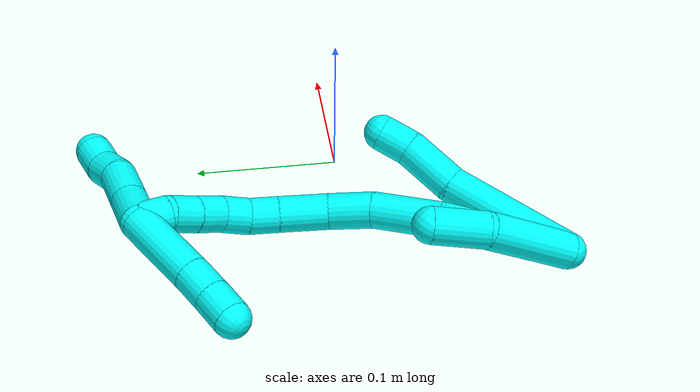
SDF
<sdf version="1.7">
 <world name="default">
  <model name="3">
   <static>0</static>
   <link name="3">
    <collision name="collision-cylinder-e_1_2_8">
     <pose>-0.008953 0.006835 0.043091 -0.157308 -0.202401 0.016007</pose>
     <geometry><cylinder><radius>0.0125</radius><length>0.089078</length></cylinder></geometry>
     <surface>
      <friction><ode><mu>1.16</mu><mu2>1.16</mu2><slip1>0</slip1><slip2>0</slip2></ode></friction>
      <contact><ode><kp>1e+06</kp><kd>1</kd><max_vel>0</max_vel><min_depth>0.001</min_depth></ode></contact>
     </surface>
    </collision>
    <visual name="visual-cylinder-e_1_2_8">
     <pose>-0.008953 0.006835 0.043091 -0.157308 -0.202401 0.016007</pose>
     <geometry><cylinder><radius>0.0125</radius><length>0.089078</length></cylinder></geometry>
     <material><ambient>0.003922 1 0.996078 1</ambient></material>
    </visual>
    <collision name="collision-cylinder-e_2_8_9">
     <pose>-0.021757 0.012841 0.105172 0.043643 -0.199836 -0.004376</pose>
     <geometry><cylinder><radius>0.0125</radius><length>0.038788</length></cylinder></geometry>
     <surface>
      <friction><ode><mu>1.16</mu><mu2>1.16</mu2><slip1>0</slip1><slip2>0</slip2></ode></friction>
      <contact><ode><kp>1e+06</kp><kd>1</kd><max_vel>0</max_vel><min_depth>0.001</min_depth></ode></contact>
     </surface>
    </collision>
    <visual name="visual-cylinder-e_2_8_9">
     <pose>-0.021757 0.012841 0.105172 0.043643 -0.199836 -0.004376</pose>
     <geometry><cylinder><radius>0.0125</radius><length>0.038788</length></cylinder></geometry>
     <material><ambient>0.003922 1 0.996078 1</ambient></material>
    </visual>
    <collision name="collision-cylinder-e_3_9_6">
     <pose>-0.02963 0.013971 0.134284 -0.191178 -0.372106 0.036092</pose>
     <geometry><cylinder><radius>0.0125</radius><length>0.022134</length></cylinder></geometry>
     <surface>
      <friction><ode><mu>1.16</mu><mu2>1.16</mu2><slip1>0</slip1><slip2>0</slip2></ode></friction>
      <contact><ode><kp>1e+06</kp><kd>1</kd><max_vel>0</max_vel><min_depth>0.001</min_depth></ode></contact>
     </surface>
    </collision>
    <visual name="visual-cylinder-e_3_9_6">
     <pose>-0.02963 0.013971 0.134284 -0.191178 -0.372106 0.036092</pose>
     <geometry><cylinder><radius>0.0125</radius><length>0.022134</length></cylinder></geometry>
     <material><ambient>0.003922 1 0.996078 1</ambient></material>
    </visual>
    <collision name="collision-cylinder-e_1_2_10">
     <pose>-0.023046 0.01225 0.016937 -0.626172 -0.834116 0.284916</pose>
     <geometry><cylinder><radius>0.0125</radius><length>0.062228</length></cylinder></geometry>
     <surface>
      <friction><ode><mu>1.16</mu><mu2>1.16</mu2><slip1>0</slip1><slip2>0</slip2></ode></friction>
      <contact><ode><kp>1e+06</kp><kd>1</kd><max_vel>0</max_vel><min_depth>0.001</min_depth></ode></contact>
     </surface>
    </collision>
    <visual name="visual-cylinder-e_1_2_10">
     <pose>-0.023046 0.01225 0.016937 -0.626172 -0.834116 0.284916</pose>
     <geometry><cylinder><radius>0.0125</radius><length>0.062228</length></cylinder></geometry>
     <material><ambient>0.003922 1 0.996078 1</ambient></material>
    </visual>
    <collision name="collision-cylinder-e_2_10_5">
     <pose>-0.055627 0.035101 0.046261 -0.707842 -0.529212 0.199562</pose>
     <geometry><cylinder><radius>0.0125</radius><length>0.037772</length></cylinder></geometry>
     <surface>
      <friction><ode><mu>1.16</mu><mu2>1.16</mu2><slip1>0</slip1><slip2>0</slip2></ode></friction>
      <contact><ode><kp>1e+06</kp><kd>1</kd><max_vel>0</max_vel><min_depth>0.001</min_depth></ode></contact>
     </surface>
    </collision>
    <visual name="visual-cylinder-e_2_10_5">
     <pose>-0.055627 0.035101 0.046261 -0.707842 -0.529212 0.199562</pose>
     <geometry><cylinder><radius>0.0125</radius><length>0.037772</length></cylinder></geometry>
     <material><ambient>0.003922 1 0.996078 1</ambient></material>
    </visual>
    <collision name="collision-cylinder-e_1_2_11">
     <pose>-0.014156 0.018575 0.035308 -0.484302 -0.340968 0.084993</pose>
     <geometry><cylinder><radius>0.0125</radius><length>0.084666</length></cylinder></geometry>
     <surface>
      <friction><ode><mu>1.16</mu><mu2>1.16</mu2><slip1>0</slip1><slip2>0</slip2></ode></friction>
      <contact><ode><kp>1e+06</kp><kd>1</kd><max_vel>0</max_vel><min_depth>0.001</min_depth></ode></contact>
     </surface>
    </collision>
    <visual name="visual-cylinder-e_1_2_11">
     <pose>-0.014156 0.018575 0.035308 -0.484302 -0.340968 0.084993</pose>
     <geometry><cylinder><radius>0.0125</radius><length>0.084666</length></cylinder></geometry>
     <material><ambient>0.003922 1 0.996078 1</ambient></material>
    </visual>
    <collision name="collision-cylinder-e_2_11_12">
     <pose>-0.030855 0.048938 0.091265 -0.518709 -0.106552 0.028296</pose>
     <geometry><cylinder><radius>0.0125</radius><length>0.047825</length></cylinder></geometry>
     <surface>
      <friction><ode><mu>1.16</mu><mu2>1.16</mu2><slip1>0</slip1><slip2>0</slip2></ode></friction>
      <contact><ode><kp>1e+06</kp><kd>1</kd><max_vel>0</max_vel><min_depth>0.001</min_depth></ode></contact>
     </surface>
    </collision>
    <visual name="visual-cylinder-e_2_11_12">
     <pose>-0.030855 0.048938 0.091265 -0.518709 -0.106552 0.028296</pose>
     <geometry><cylinder><radius>0.0125</radius><length>0.047825</length></cylinder></geometry>
     <material><ambient>0.003922 1 0.996078 1</ambient></material>
    </visual>
    <collision name="collision-cylinder-e_3_12_13">
     <pose>-0.035947 0.070833 0.123336 -0.724418 -0.165556 0.062857</pose>
     <geometry><cylinder><radius>0.0125</radius><length>0.030928</length></cylinder></geometry>
     <surface>
      <friction><ode><mu>1.16</mu><mu2>1.16</mu2><slip1>0</slip1><slip2>0</slip2></ode></friction>
      <contact><ode><kp>1e+06</kp><kd>1</kd><max_vel>0</max_vel><min_depth>0.001</min_depth></ode></contact>
     </surface>
    </collision>
    <visual name="visual-cylinder-e_3_12_13">
     <pose>-0.035947 0.070833 0.123336 -0.724418 -0.165556 0.062857</pose>
     <geometry><cylinder><radius>0.0125</radius><length>0.030928</length></cylinder></geometry>
     <material><ambient>0.003922 1 0.996078 1</ambient></material>
    </visual>
    <collision name="collision-cylinder-e_4_13_14">
     <pose>-0.04596 0.092718 0.145104 -0.850055 -0.444447 0.203834</pose>
     <geometry><cylinder><radius>0.0125</radius><length>0.034725</length></cylinder></geometry>
     <surface>
      <friction><ode><mu>1.16</mu><mu2>1.16</mu2><slip1>0</slip1><slip2>0</slip2></ode></friction>
      <contact><ode><kp>1e+06</kp><kd>1</kd><max_vel>0</max_vel><min_depth>0.001</min_depth></ode></contact>
     </surface>
    </collision>
    <visual name="visual-cylinder-e_4_13_14">
     <pose>-0.04596 0.092718 0.145104 -0.850055 -0.444447 0.203834</pose>
     <geometry><cylinder><radius>0.0125</radius><length>0.034725</length></cylinder></geometry>
     <material><ambient>0.003922 1 0.996078 1</ambient></material>
    </visual>
    <collision name="collision-cylinder-e_5_14_15">
     <pose>-0.058534 0.111465 0.161169 -0.883543 -0.515475 0.248058</pose>
     <geometry><cylinder><radius>0.0125</radius><length>0.020725</length></cylinder></geometry>
     <surface>
      <friction><ode><mu>1.16</mu><mu2>1.16</mu2><slip1>0</slip1><slip2>0</slip2></ode></friction>
      <contact><ode><kp>1e+06</kp><kd>1</kd><max_vel>0</max_vel><min_depth>0.001</min_depth></ode></contact>
     </surface>
    </collision>
    <visual name="visual-cylinder-e_5_14_15">
     <pose>-0.058534 0.111465 0.161169 -0.883543 -0.515475 0.248058</pose>
     <geometry><cylinder><radius>0.0125</radius><length>0.020725</length></cylinder></geometry>
     <material><ambient>0.003922 1 0.996078 1</ambient></material>
    </visual>
    <collision name="collision-cylinder-e_6_15_16">
     <pose>-0.071077 0.12354 0.171516 -0.834581 -0.823389 0.382425</pose>
     <geometry><cylinder><radius>0.0125</radius><length>0.020275</length></cylinder></geometry>
     <surface>
      <friction><ode><mu>1.16</mu><mu2>1.16</mu2><slip1>0</slip1><slip2>0</slip2></ode></friction>
      <contact><ode><kp>1e+06</kp><kd>1</kd><max_vel>0</max_vel><min_depth>0.001</min_depth></ode></contact>
     </surface>
    </collision>
    <visual name="visual-cylinder-e_6_15_16">
     <pose>-0.071077 0.12354 0.171516 -0.834581 -0.823389 0.382425</pose>
     <geometry><cylinder><radius>0.0125</radius><length>0.020275</length></cylinder></geometry>
     <material><ambient>0.003922 1 0.996078 1</ambient></material>
    </visual>
    <collision name="collision-cylinder-e_7_16_17">
     <pose>-0.087005 0.133758 0.178507 -1.13756 -0.985293 0.661106</pose>
     <geometry><cylinder><radius>0.0125</radius><length>0.02038</length></cylinder></geometry>
     <surface>
      <friction><ode><mu>1.16</mu><mu2>1.16</mu2><slip1>0</slip1><slip2>0</slip2></ode></friction>
      <contact><ode><kp>1e+06</kp><kd>1</kd><max_vel>0</max_vel><min_depth>0.001</min_depth></ode></contact>
     </surface>
    </collision>
    <visual name="visual-cylinder-e_7_16_17">
     <pose>-0.087005 0.133758 0.178507 -1.13756 -0.985293 0.661106</pose>
     <geometry><cylinder><radius>0.0125</radius><length>0.02038</length></cylinder></geometry>
     <material><ambient>0.003922 1 0.996078 1</ambient></material>
    </visual>
    <collision name="collision-cylinder-e_8_17_18">
     <pose>-0.103968 0.143714 0.183422 -1.08613 -0.996904 0.634856</pose>
     <geometry><cylinder><radius>0.0125</radius><length>0.020172</length></cylinder></geometry>
     <surface>
      <friction><ode><mu>1.16</mu><mu2>1.16</mu2><slip1>0</slip1><slip2>0</slip2></ode></friction>
      <contact><ode><kp>1e+06</kp><kd>1</kd><max_vel>0</max_vel><min_depth>0.001</min_depth></ode></contact>
     </surface>
    </collision>
    <visual name="visual-cylinder-e_8_17_18">
     <pose>-0.103968 0.143714 0.183422 -1.08613 -0.996904 0.634856</pose>
     <geometry><cylinder><radius>0.0125</radius><length>0.020172</length></cylinder></geometry>
     <material><ambient>0.003922 1 0.996078 1</ambient></material>
    </visual>
    <collision name="collision-cylinder-e_9_18_1">
     <pose>-0.118675 0.156061 0.188785 -1.21222 -0.661434 0.46726</pose>
     <geometry><cylinder><radius>0.0125</radius><length>0.020305</length></cylinder></geometry>
     <surface>
      <friction><ode><mu>1.16</mu><mu2>1.16</mu2><slip1>0</slip1><slip2>0</slip2></ode></friction>
      <contact><ode><kp>1e+06</kp><kd>1</kd><max_vel>0</max_vel><min_depth>0.001</min_depth></ode></contact>
     </surface>
    </collision>
    <visual name="visual-cylinder-e_9_18_1">
     <pose>-0.118675 0.156061 0.188785 -1.21222 -0.661434 0.46726</pose>
     <geometry><cylinder><radius>0.0125</radius><length>0.020305</length></cylinder></geometry>
     <material><ambient>0.003922 1 0.996078 1</ambient></material>
    </visual>
    <collision name="collision-cylinder-e_1_1_19">
     <pose>-0.125823 0.164109 0.163457 -3.12216 -0.032398 2.06132</pose>
     <geometry><cylinder><radius>0.0125</radius><length>0.056319</length></cylinder></geometry>
     <surface>
      <friction><ode><mu>1.16</mu><mu2>1.16</mu2><slip1>0</slip1><slip2>0</slip2></ode></friction>
      <contact><ode><kp>1e+06</kp><kd>1</kd><max_vel>0</max_vel><min_depth>0.001</min_depth></ode></contact>
     </surface>
    </collision>
    <visual name="visual-cylinder-e_1_1_19">
     <pose>-0.125823 0.164109 0.163457 -3.12216 -0.032398 2.06132</pose>
     <geometry><cylinder><radius>0.0125</radius><length>0.056319</length></cylinder></geometry>
     <material><ambient>0.003922 1 0.996078 1</ambient></material>
    </visual>
    <collision name="collision-cylinder-e_2_19_20">
     <pose>-0.127341 0.165247 0.124223 -3.08833 -0.054481 1.59341</pose>
     <geometry><cylinder><radius>0.0125</radius><length>0.022252</length></cylinder></geometry>
     <surface>
      <friction><ode><mu>1.16</mu><mu2>1.16</mu2><slip1>0</slip1><slip2>0</slip2></ode></friction>
      <contact><ode><kp>1e+06</kp><kd>1</kd><max_vel>0</max_vel><min_depth>0.001</min_depth></ode></contact>
     </surface>
    </collision>
    <visual name="visual-cylinder-e_2_19_20">
     <pose>-0.127341 0.165247 0.124223 -3.08833 -0.054481 1.59341</pose>
     <geometry><cylinder><radius>0.0125</radius><length>0.022252</length></cylinder></geometry>
     <material><ambient>0.003922 1 0.996078 1</ambient></material>
    </visual>
    <collision name="collision-cylinder-e_3_20_4">
     <pose>-0.129048 0.16656 0.102497 -3.07387 -0.103009 1.9789</pose>
     <geometry><cylinder><radius>0.0125</radius><length>0.021429</length></cylinder></geometry>
     <surface>
      <friction><ode><mu>1.16</mu><mu2>1.16</mu2><slip1>0</slip1><slip2>0</slip2></ode></friction>
      <contact><ode><kp>1e+06</kp><kd>1</kd><max_vel>0</max_vel><min_depth>0.001</min_depth></ode></contact>
     </surface>
    </collision>
    <visual name="visual-cylinder-e_3_20_4">
     <pose>-0.129048 0.16656 0.102497 -3.07387 -0.103009 1.9789</pose>
     <geometry><cylinder><radius>0.0125</radius><length>0.021429</length></cylinder></geometry>
     <material><ambient>0.003922 1 0.996078 1</ambient></material>
    </visual>
    <collision name="collision-cylinder-e_1_1_21">
     <pose>-0.118502 0.161568 0.20366 0.163859 0.48274 0.040422</pose>
     <geometry><cylinder><radius>0.0125</radius><length>0.027611</length></cylinder></geometry>
     <surface>
      <friction><ode><mu>1.16</mu><mu2>1.16</mu2><slip1>0</slip1><slip2>0</slip2></ode></friction>
      <contact><ode><kp>1e+06</kp><kd>1</kd><max_vel>0</max_vel><min_depth>0.001</min_depth></ode></contact>
     </surface>
    </collision>
    <visual name="visual-cylinder-e_1_1_21">
     <pose>-0.118502 0.161568 0.20366 0.163859 0.48274 0.040422</pose>
     <geometry><cylinder><radius>0.0125</radius><length>0.027611</length></cylinder></geometry>
     <material><ambient>0.003922 1 0.996078 1</ambient></material>
    </visual>
    <collision name="collision-cylinder-e_2_21_22">
     <pose>-0.105687 0.156765 0.230124 0.192597 0.41173 0.040338</pose>
     <geometry><cylinder><radius>0.0125</radius><length>0.032017</length></cylinder></geometry>
     <surface>
      <friction><ode><mu>1.16</mu><mu2>1.16</mu2><slip1>0</slip1><slip2>0</slip2></ode></friction>
      <contact><ode><kp>1e+06</kp><kd>1</kd><max_vel>0</max_vel><min_depth>0.001</min_depth></ode></contact>
     </surface>
    </collision>
    <visual name="visual-cylinder-e_2_21_22">
     <pose>-0.105687 0.156765 0.230124 0.192597 0.41173 0.040338</pose>
     <geometry><cylinder><radius>0.0125</radius><length>0.032017</length></cylinder></geometry>
     <material><ambient>0.003922 1 0.996078 1</ambient></material>
    </visual>
    <collision name="collision-cylinder-e_3_22_23">
     <pose>-0.095712 0.155415 0.253881 -0.154609 0.360291 -0.028212</pose>
     <geometry><cylinder><radius>0.0125</radius><length>0.020242</length></cylinder></geometry>
     <surface>
      <friction><ode><mu>1.16</mu><mu2>1.16</mu2><slip1>0</slip1><slip2>0</slip2></ode></friction>
      <contact><ode><kp>1e+06</kp><kd>1</kd><max_vel>0</max_vel><min_depth>0.001</min_depth></ode></contact>
     </surface>
    </collision>
    <visual name="visual-cylinder-e_3_22_23">
     <pose>-0.095712 0.155415 0.253881 -0.154609 0.360291 -0.028212</pose>
     <geometry><cylinder><radius>0.0125</radius><length>0.020242</length></cylinder></geometry>
     <material><ambient>0.003922 1 0.996078 1</ambient></material>
    </visual>
    <collision name="collision-cylinder-e_4_23_3">
     <pose>-0.089808 0.155454 0.272927 0.1455 0.234217 0.017147</pose>
     <geometry><cylinder><radius>0.0125</radius><length>0.02013</length></cylinder></geometry>
     <surface>
      <friction><ode><mu>1.16</mu><mu2>1.16</mu2><slip1>0</slip1><slip2>0</slip2></ode></friction>
      <contact><ode><kp>1e+06</kp><kd>1</kd><max_vel>0</max_vel><min_depth>0.001</min_depth></ode></contact>
     </surface>
    </collision>
    <visual name="visual-cylinder-e_4_23_3">
     <pose>-0.089808 0.155454 0.272927 0.1455 0.234217 0.017147</pose>
     <geometry><cylinder><radius>0.0125</radius><length>0.02013</length></cylinder></geometry>
     <material><ambient>0.003922 1 0.996078 1</ambient></material>
    </visual>
    <collision name="collision-sphere-3">
     <pose>-0.087472 0.154035 0.282613 0 -0 0</pose>
     <geometry><sphere><radius>0.0125</radius></sphere></geometry>
     <surface>
      <friction><ode><mu>1.16</mu><mu2>1.16</mu2><slip1>0</slip1><slip2>0</slip2></ode></friction>
      <contact><ode><kp>1e+06</kp><kd>1</kd><max_vel>0</max_vel><min_depth>0.001</min_depth></ode></contact>
     </surface>
    </collision>
    <visual name="visual-sphere-3">
     <pose>-0.087472 0.154035 0.282613 0 -0 0</pose>
     <geometry><sphere><radius>0.0125</radius></sphere></geometry>
     <material><ambient>0.003922 1 0.996078 1</ambient></material>
    </visual>
    <collision name="collision-sphere-23">
     <pose>-0.092144 0.156874 0.26324 0 -0 0</pose>
     <geometry><sphere><radius>0.0125</radius></sphere></geometry>
     <surface>
      <friction><ode><mu>1.16</mu><mu2>1.16</mu2><slip1>0</slip1><slip2>0</slip2></ode></friction>
      <contact><ode><kp>1e+06</kp><kd>1</kd><max_vel>0</max_vel><min_depth>0.001</min_depth></ode></contact>
     </surface>
    </collision>
    <visual name="visual-sphere-23">
     <pose>-0.092144 0.156874 0.26324 0 -0 0</pose>
     <geometry><sphere><radius>0.0125</radius></sphere></geometry>
     <material><ambient>0.003922 1 0.996078 1</ambient></material>
    </visual>
    <collision name="collision-sphere-22">
     <pose>-0.099281 0.153957 0.244523 0 -0 0</pose>
     <geometry><sphere><radius>0.0125</radius></sphere></geometry>
     <surface>
      <friction><ode><mu>1.16</mu><mu2>1.16</mu2><slip1>0</slip1><slip2>0</slip2></ode></friction>
      <contact><ode><kp>1e+06</kp><kd>1</kd><max_vel>0</max_vel><min_depth>0.001</min_depth></ode></contact>
     </surface>
    </collision>
    <visual name="visual-sphere-22">
     <pose>-0.099281 0.153957 0.244523 0 -0 0</pose>
     <geometry><sphere><radius>0.0125</radius></sphere></geometry>
     <material><ambient>0.003922 1 0.996078 1</ambient></material>
    </visual>
    <collision name="collision-sphere-21">
     <pose>-0.112093 0.159573 0.215725 0 -0 0</pose>
     <geometry><sphere><radius>0.0125</radius></sphere></geometry>
     <surface>
      <friction><ode><mu>1.16</mu><mu2>1.16</mu2><slip1>0</slip1><slip2>0</slip2></ode></friction>
      <contact><ode><kp>1e+06</kp><kd>1</kd><max_vel>0</max_vel><min_depth>0.001</min_depth></ode></contact>
     </surface>
    </collision>
    <visual name="visual-sphere-21">
     <pose>-0.112093 0.159573 0.215725 0 -0 0</pose>
     <geometry><sphere><radius>0.0125</radius></sphere></geometry>
     <material><ambient>0.003922 1 0.996078 1</ambient></material>
    </visual>
    <collision name="collision-sphere-4">
     <pose>-0.13015 0.167281 0.091863 0 -0 0</pose>
     <geometry><sphere><radius>0.0125</radius></sphere></geometry>
     <surface>
      <friction><ode><mu>1.16</mu><mu2>1.16</mu2><slip1>0</slip1><slip2>0</slip2></ode></friction>
      <contact><ode><kp>1e+06</kp><kd>1</kd><max_vel>0</max_vel><min_depth>0.001</min_depth></ode></contact>
     </surface>
    </collision>
    <visual name="visual-sphere-4">
     <pose>-0.13015 0.167281 0.091863 0 -0 0</pose>
     <geometry><sphere><radius>0.0125</radius></sphere></geometry>
     <material><ambient>0.003922 1 0.996078 1</ambient></material>
    </visual>
    <collision name="collision-sphere-20">
     <pose>-0.127947 0.165839 0.11313 0 -0 0</pose>
     <geometry><sphere><radius>0.0125</radius></sphere></geometry>
     <surface>
      <friction><ode><mu>1.16</mu><mu2>1.16</mu2><slip1>0</slip1><slip2>0</slip2></ode></friction>
      <contact><ode><kp>1e+06</kp><kd>1</kd><max_vel>0</max_vel><min_depth>0.001</min_depth></ode></contact>
     </surface>
    </collision>
    <visual name="visual-sphere-20">
     <pose>-0.127947 0.165839 0.11313 0 -0 0</pose>
     <geometry><sphere><radius>0.0125</radius></sphere></geometry>
     <material><ambient>0.003922 1 0.996078 1</ambient></material>
    </visual>
    <collision name="collision-sphere-5">
     <pose>-0.065162 0.0457 0.058647 0 -0 0</pose>
     <geometry><sphere><radius>0.0125</radius></sphere></geometry>
     <surface>
      <friction><ode><mu>1.16</mu><mu2>1.16</mu2><slip1>0</slip1><slip2>0</slip2></ode></friction>
      <contact><ode><kp>1e+06</kp><kd>1</kd><max_vel>0</max_vel><min_depth>0.001</min_depth></ode></contact>
     </surface>
    </collision>
    <visual name="visual-sphere-5">
     <pose>-0.065162 0.0457 0.058647 0 -0 0</pose>
     <geometry><sphere><radius>0.0125</radius></sphere></geometry>
     <material><ambient>0.003922 1 0.996078 1</ambient></material>
    </visual>
    <collision name="collision-sphere-10">
     <pose>-0.046092 0.024501 0.033875 0 -0 0</pose>
     <geometry><sphere><radius>0.0125</radius></sphere></geometry>
     <surface>
      <friction><ode><mu>1.16</mu><mu2>1.16</mu2><slip1>0</slip1><slip2>0</slip2></ode></friction>
      <contact><ode><kp>1e+06</kp><kd>1</kd><max_vel>0</max_vel><min_depth>0.001</min_depth></ode></contact>
     </surface>
    </collision>
    <visual name="visual-sphere-10">
     <pose>-0.046092 0.024501 0.033875 0 -0 0</pose>
     <geometry><sphere><radius>0.0125</radius></sphere></geometry>
     <material><ambient>0.003922 1 0.996078 1</ambient></material>
    </visual>
    <collision name="collision-sphere-6">
     <pose>-0.033654 0.015929 0.144406 0 -0 0</pose>
     <geometry><sphere><radius>0.0125</radius></sphere></geometry>
     <surface>
      <friction><ode><mu>1.16</mu><mu2>1.16</mu2><slip1>0</slip1><slip2>0</slip2></ode></friction>
      <contact><ode><kp>1e+06</kp><kd>1</kd><max_vel>0</max_vel><min_depth>0.001</min_depth></ode></contact>
     </surface>
    </collision>
    <visual name="visual-sphere-6">
     <pose>-0.033654 0.015929 0.144406 0 -0 0</pose>
     <geometry><sphere><radius>0.0125</radius></sphere></geometry>
     <material><ambient>0.003922 1 0.996078 1</ambient></material>
    </visual>
    <collision name="collision-sphere-9">
     <pose>-0.025606 0.012012 0.124162 0 -0 0</pose>
     <geometry><sphere><radius>0.0125</radius></sphere></geometry>
     <surface>
      <friction><ode><mu>1.16</mu><mu2>1.16</mu2><slip1>0</slip1><slip2>0</slip2></ode></friction>
      <contact><ode><kp>1e+06</kp><kd>1</kd><max_vel>0</max_vel><min_depth>0.001</min_depth></ode></contact>
     </surface>
    </collision>
    <visual name="visual-sphere-9">
     <pose>-0.025606 0.012012 0.124162 0 -0 0</pose>
     <geometry><sphere><radius>0.0125</radius></sphere></geometry>
     <material><ambient>0.003922 1 0.996078 1</ambient></material>
    </visual>
    <collision name="collision-sphere-2">
     <geometry><sphere><radius>0.0125</radius></sphere></geometry>
     <surface>
      <friction><ode><mu>1.16</mu><mu2>1.16</mu2><slip1>0</slip1><slip2>0</slip2></ode></friction>
      <contact><ode><kp>1e+06</kp><kd>1</kd><max_vel>0</max_vel><min_depth>0.001</min_depth></ode></contact>
     </surface>
    </collision>
    <visual name="visual-sphere-2">
     <geometry><sphere><radius>0.0125</radius></sphere></geometry>
     <material><ambient>0.003922 1 0.996078 1</ambient></material>
    </visual>
    <collision name="collision-sphere-19">
     <pose>-0.126735 0.164656 0.135317 0 -0 0</pose>
     <geometry><sphere><radius>0.0125</radius></sphere></geometry>
     <surface>
      <friction><ode><mu>1.16</mu><mu2>1.16</mu2><slip1>0</slip1><slip2>0</slip2></ode></friction>
      <contact><ode><kp>1e+06</kp><kd>1</kd><max_vel>0</max_vel><min_depth>0.001</min_depth></ode></contact>
     </surface>
    </collision>
    <visual name="visual-sphere-19">
     <pose>-0.126735 0.164656 0.135317 0 -0 0</pose>
     <geometry><sphere><radius>0.0125</radius></sphere></geometry>
     <material><ambient>0.003922 1 0.996078 1</ambient></material>
    </visual>
    <collision name="collision-sphere-8">
     <pose>-0.017907 0.01367 0.086182 0 -0 0</pose>
     <geometry><sphere><radius>0.0125</radius></sphere></geometry>
     <surface>
      <friction><ode><mu>1.16</mu><mu2>1.16</mu2><slip1>0</slip1><slip2>0</slip2></ode></friction>
      <contact><ode><kp>1e+06</kp><kd>1</kd><max_vel>0</max_vel><min_depth>0.001</min_depth></ode></contact>
     </surface>
    </collision>
    <visual name="visual-sphere-8">
     <pose>-0.017907 0.01367 0.086182 0 -0 0</pose>
     <geometry><sphere><radius>0.0125</radius></sphere></geometry>
     <material><ambient>0.003922 1 0.996078 1</ambient></material>
    </visual>
    <collision name="collision-sphere-11">
     <pose>-0.028312 0.03715 0.070616 0 -0 0</pose>
     <geometry><sphere><radius>0.0125</radius></sphere></geometry>
     <surface>
      <friction><ode><mu>1.16</mu><mu2>1.16</mu2><slip1>0</slip1><slip2>0</slip2></ode></friction>
      <contact><ode><kp>1e+06</kp><kd>1</kd><max_vel>0</max_vel><min_depth>0.001</min_depth></ode></contact>
     </surface>
    </collision>
    <visual name="visual-sphere-11">
     <pose>-0.028312 0.03715 0.070616 0 -0 0</pose>
     <geometry><sphere><radius>0.0125</radius></sphere></geometry>
     <material><ambient>0.003922 1 0.996078 1</ambient></material>
    </visual>
    <collision name="collision-sphere-12">
     <pose>-0.033398 0.060725 0.111914 0 -0 0</pose>
     <geometry><sphere><radius>0.0125</radius></sphere></geometry>
     <surface>
      <friction><ode><mu>1.16</mu><mu2>1.16</mu2><slip1>0</slip1><slip2>0</slip2></ode></friction>
      <contact><ode><kp>1e+06</kp><kd>1</kd><max_vel>0</max_vel><min_depth>0.001</min_depth></ode></contact>
     </surface>
    </collision>
    <visual name="visual-sphere-12">
     <pose>-0.033398 0.060725 0.111914 0 -0 0</pose>
     <geometry><sphere><radius>0.0125</radius></sphere></geometry>
     <material><ambient>0.003922 1 0.996078 1</ambient></material>
    </visual>
    <collision name="collision-sphere-13">
     <pose>-0.038495 0.080941 0.134759 0 -0 0</pose>
     <geometry><sphere><radius>0.0125</radius></sphere></geometry>
     <surface>
      <friction><ode><mu>1.16</mu><mu2>1.16</mu2><slip1>0</slip1><slip2>0</slip2></ode></friction>
      <contact><ode><kp>1e+06</kp><kd>1</kd><max_vel>0</max_vel><min_depth>0.001</min_depth></ode></contact>
     </surface>
    </collision>
    <visual name="visual-sphere-13">
     <pose>-0.038495 0.080941 0.134759 0 -0 0</pose>
     <geometry><sphere><radius>0.0125</radius></sphere></geometry>
     <material><ambient>0.003922 1 0.996078 1</ambient></material>
    </visual>
    <collision name="collision-sphere-14">
     <pose>-0.053426 0.104496 0.155449 0 -0 0</pose>
     <geometry><sphere><radius>0.0125</radius></sphere></geometry>
     <surface>
      <friction><ode><mu>1.16</mu><mu2>1.16</mu2><slip1>0</slip1><slip2>0</slip2></ode></friction>
      <contact><ode><kp>1e+06</kp><kd>1</kd><max_vel>0</max_vel><min_depth>0.001</min_depth></ode></contact>
     </surface>
    </collision>
    <visual name="visual-sphere-14">
     <pose>-0.053426 0.104496 0.155449 0 -0 0</pose>
     <geometry><sphere><radius>0.0125</radius></sphere></geometry>
     <material><ambient>0.003922 1 0.996078 1</ambient></material>
    </visual>
    <collision name="collision-sphere-15">
     <pose>-0.063642 0.118434 0.166888 0 -0 0</pose>
     <geometry><sphere><radius>0.0125</radius></sphere></geometry>
     <surface>
      <friction><ode><mu>1.16</mu><mu2>1.16</mu2><slip1>0</slip1><slip2>0</slip2></ode></friction>
      <contact><ode><kp>1e+06</kp><kd>1</kd><max_vel>0</max_vel><min_depth>0.001</min_depth></ode></contact>
     </surface>
    </collision>
    <visual name="visual-sphere-15">
     <pose>-0.063642 0.118434 0.166888 0 -0 0</pose>
     <geometry><sphere><radius>0.0125</radius></sphere></geometry>
     <material><ambient>0.003922 1 0.996078 1</ambient></material>
    </visual>
    <collision name="collision-sphere-16">
     <pose>-0.078513 0.128647 0.176143 0 -0 0</pose>
     <geometry><sphere><radius>0.0125</radius></sphere></geometry>
     <surface>
      <friction><ode><mu>1.16</mu><mu2>1.16</mu2><slip1>0</slip1><slip2>0</slip2></ode></friction>
      <contact><ode><kp>1e+06</kp><kd>1</kd><max_vel>0</max_vel><min_depth>0.001</min_depth></ode></contact>
     </surface>
    </collision>
    <visual name="visual-sphere-16">
     <pose>-0.078513 0.128647 0.176143 0 -0 0</pose>
     <geometry><sphere><radius>0.0125</radius></sphere></geometry>
     <material><ambient>0.003922 1 0.996078 1</ambient></material>
    </visual>
    <collision name="collision-sphere-17">
     <pose>-0.095498 0.138868 0.180871 0 -0 0</pose>
     <geometry><sphere><radius>0.0125</radius></sphere></geometry>
     <surface>
      <friction><ode><mu>1.16</mu><mu2>1.16</mu2><slip1>0</slip1><slip2>0</slip2></ode></friction>
      <contact><ode><kp>1e+06</kp><kd>1</kd><max_vel>0</max_vel><min_depth>0.001</min_depth></ode></contact>
     </surface>
    </collision>
    <visual name="visual-sphere-17">
     <pose>-0.095498 0.138868 0.180871 0 -0 0</pose>
     <geometry><sphere><radius>0.0125</radius></sphere></geometry>
     <material><ambient>0.003922 1 0.996078 1</ambient></material>
    </visual>
    <collision name="collision-sphere-18">
     <pose>-0.112439 0.148559 0.185973 0 -0 0</pose>
     <geometry><sphere><radius>0.0125</radius></sphere></geometry>
     <surface>
      <friction><ode><mu>1.16</mu><mu2>1.16</mu2><slip1>0</slip1><slip2>0</slip2></ode></friction>
      <contact><ode><kp>1e+06</kp><kd>1</kd><max_vel>0</max_vel><min_depth>0.001</min_depth></ode></contact>
     </surface>
    </collision>
    <visual name="visual-sphere-18">
     <pose>-0.112439 0.148559 0.185973 0 -0 0</pose>
     <geometry><sphere><radius>0.0125</radius></sphere></geometry>
     <material><ambient>0.003922 1 0.996078 1</ambient></material>
    </visual>
    <collision name="collision-sphere-1">
     <pose>-0.124911 0.163562 0.191596 0 -0 0</pose>
     <geometry><sphere><radius>0.0125</radius></sphere></geometry>
     <surface>
      <friction><ode><mu>1.16</mu><mu2>1.16</mu2><slip1>0</slip1><slip2>0</slip2></ode></friction>
      <contact><ode><kp>1e+06</kp><kd>1</kd><max_vel>0</max_vel><min_depth>0.001</min_depth></ode></contact>
     </surface>
    </collision>
    <visual name="visual-sphere-1">
     <pose>-0.124911 0.163562 0.191596 0 -0 0</pose>
     <geometry><sphere><radius>0.0125</radius></sphere></geometry>
     <material><ambient>0.003922 1 0.996078 1</ambient></material>
    </visual>
    <inertial>
     <pose>-0.057647 0.078241 0.114238 0 -0 0</pose>
     <mass>0.75</mass>
     <inertia>
      <ixx>0.000181</ixx>
      <ixy>0</ixy>
      <ixz>0</ixz>
      <iyy>0.000233</iyy>
      <iyz>0</iyz>
      <izz>2.8e-05</izz>
     </inertia>
    </inertial>
   </link>
   <pose>-0.126657 -0.137087 0.01225 -1.35944 0.9268 -0.780196</pose>
  </model>
 </world>
</sdf>
